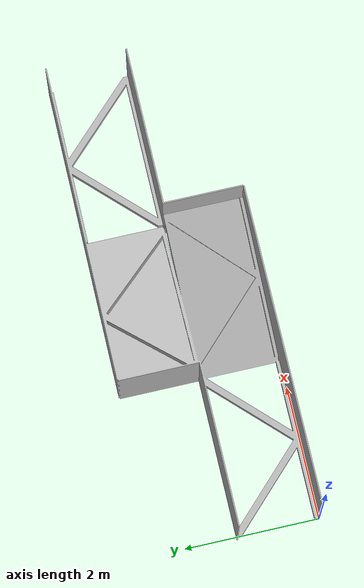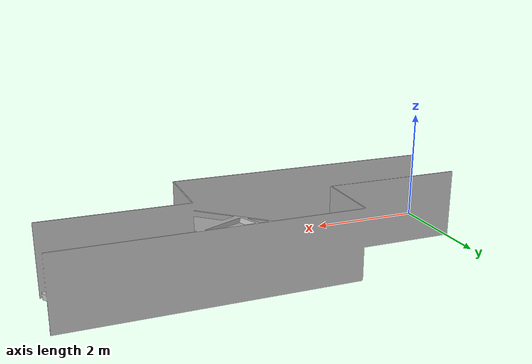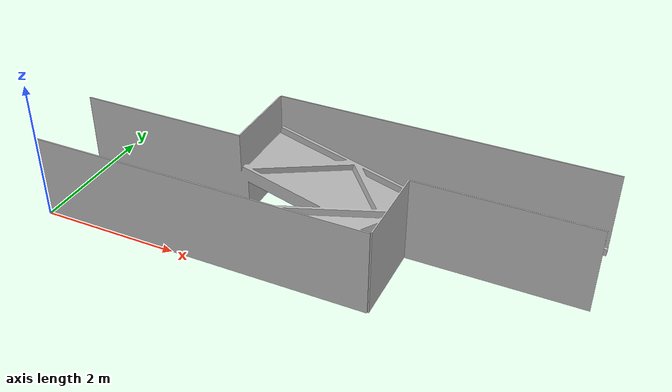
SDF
<?xml version='1.0'?>
<sdf version='1.6'>
  <model name='terrain-rails_k_slope'>
    <static>true</static>
    <link name='base_link'>
      <pose frame=''>0 0 0 0 -0 0</pose>
      <inertial>
        <pose frame=''>3.6 1.218 0.41443 0 -0 0</pose>
        <mass>875.13</mass>
        <inertia>
          <ixx>117.95</ixx>
          <ixy>4.4853e-14</ixy>
          <ixz>-3.7229e-14</ixz>
          <iyy>319.97</iyy>
          <iyz>8.0338e-15</iyz>
          <izz>322.12</izz>
        </inertia>
      </inertial>
      <collision name='base_link_collision'>
        <pose frame=''>0 0 0 0 -0 0</pose>
        <geometry>
          <mesh>
            <scale>1 1 1</scale>
            <uri>model://terrain-rails_k_slope/meshes/base_link.STL</uri>
          </mesh>
        </geometry>
        <surface>
          <contact>
            <collide_bitmask>65535</collide_bitmask>
            <ode/>
          </contact>
          <friction>
            <ode>
              <mu>2</mu>
              <mu2>2</mu2>
            </ode>
            <torsional>
              <ode/>
            </torsional>
          </friction>
          <bounce/>
        </surface>
      </collision>
      <visual name='base_link_visual'>
        <pose frame=''>0 0 0 0 -0 0</pose>
        <geometry>
          <mesh>
            <scale>1 1 1</scale>
            <uri>model://terrain-rails_k_slope/meshes/base_link.STL</uri>
          </mesh>
        </geometry>
      </visual>
    </link>
  </model>
</sdf>
